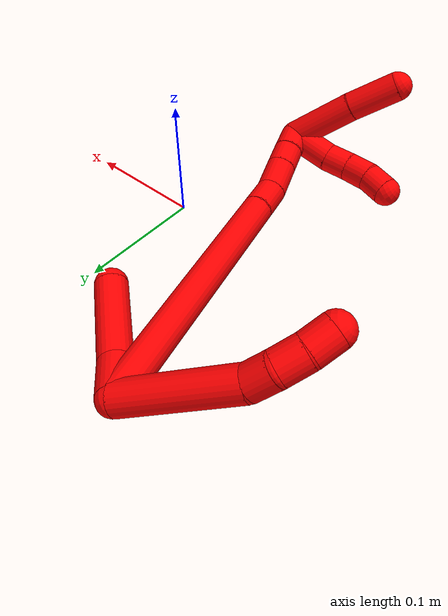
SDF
<sdf version="1.7">
 <world name="default">
  <model name="photoneo_s_sensor">
   <static>1</static>
   <pose>0 0 2 1.57079 1.57079 3.14159</pose>
   <link name="link">
    <inertial><mass>0.1</mass></inertial>
    <sensor name="sensor" type="depth">
     <update_rate>30</update_rate>
     <camera>
      <horizontal_fov>1.22</horizontal_fov>
      <image><width>1920</width><height>1200</height><format>B8G8R8</format></image>
      <clip><near>0.1</near><far>4</far></clip>
      <depth_camera><output>points</output></depth_camera>
     </camera>
     <plugin name="camera_plugin" filename="libgazebo_ros_depth_camera.so">
      <baseline>0.2</baseline>
      <alwaysOn>1</alwaysOn>
      <updateRate>0.0</updateRate>
      <cameraName>camera_ir</cameraName>
      <imageTopicName>/camera/color/image_raw</imageTopicName>
      <cameraInfoTopicName>/camera/color/camera_info</cameraInfoTopicName>
      <depthImageTopicName>/camera/depth/image_raw</depthImageTopicName>
      <depthImageCameraInfoTopicName>/camera/depth/camera_info</depthImageCameraInfoTopicName>
      <pointCloudTopicName>/camera/depth/points</pointCloudTopicName>
      <frameName>fr_optical</frameName>
      <pointCloudCutoff>0.1</pointCloudCutoff>
      <pointCloudCutoffMax>2.0</pointCloudCutoffMax>
      <distortionK1>0</distortionK1>
      <distortionK2>0</distortionK2>
      <distortionK3>0</distortionK3>
      <distortionT1>0</distortionT1>
      <distortionT2>0</distortionT2>
      <CxPrime>0</CxPrime>
      <Cx>0</Cx>
      <Cy>0</Cy>
      <focalLength>0</focalLength>
      <hackBaseline>0</hackBaseline>
     </plugin>
    </sensor>
   </link>
  </model>
  <model name="bin">
   <static>1</static>
   <link name="bottom">
    <collision name="collision-bottom">
     <pose>0 0 -0.01 0 -0 0</pose>
     <geometry><box><size>0.8 0.6 0.02</size></box></geometry>
     <surface>
      <friction><ode><mu>100</mu><mu2>100</mu2></ode></friction>
      <contact><collide_bitmask>65535</collide_bitmask></contact>
     </surface>
    </collision>
   </link>
   <link name="west_wall">
    <collision name="collision-west_wall">
     <pose>-0.41 0 0.1 0 -0 0</pose>
     <geometry><box><size>0.02 0.6 0.2</size></box></geometry>
     <surface>
      <friction><ode><mu>100</mu><mu2>100</mu2></ode></friction>
      <contact><collide_bitmask>65535</collide_bitmask></contact>
     </surface>
    </collision>
   </link>
   <link name="east_wall">
    <collision name="collision-east_wall">
     <pose>0.41 0 0.1 0 -0 0</pose>
     <geometry><box><size>0.02 0.6 0.2</size></box></geometry>
     <surface>
      <friction><ode><mu>100</mu><mu2>100</mu2></ode></friction>
      <contact><collide_bitmask>65535</collide_bitmask></contact>
     </surface>
    </collision>
   </link>
   <link name="south_wall">
    <collision name="collision-south_wall">
     <pose>0 -0.31 0.1 0 -0 0</pose>
     <geometry><box><size>0.8 0.02 0.2</size></box></geometry>
     <surface>
      <friction><ode><mu>100</mu><mu2>100</mu2></ode></friction>
      <contact><collide_bitmask>65535</collide_bitmask></contact>
     </surface>
    </collision>
   </link>
   <link name="north_wall">
    <collision name="collision-north_wall">
     <pose>0 0.31 0.1 0 -0 0</pose>
     <geometry><box><size>0.8 0.02 0.2</size></box></geometry>
     <surface>
      <friction><ode><mu>100</mu><mu2>100</mu2></ode></friction>
      <contact><collide_bitmask>65535</collide_bitmask></contact>
     </surface>
    </collision>
   </link>
  </model>
  <model name="2">
   <static>0</static>
   <link name="2">
    <collision name="collision-cylinder-e_1_2_8">
     <pose>-0.013784 -0.005805 0.041976 0.137424 -0.314481 -0.021822</pose>
     <geometry><cylinder><radius>0.0125</radius><length>0.089122</length></cylinder></geometry>
     <surface>
      <friction><ode><mu>1.16</mu><mu2>1.16</mu2><slip1>0</slip1><slip2>0</slip2></ode></friction>
      <contact><ode><kp>1e+06</kp><kd>1</kd><max_vel>0</max_vel><min_depth>0.001</min_depth></ode></contact>
     </surface>
    </collision>
    <visual name="visual-cylinder-e_1_2_8">
     <pose>-0.013784 -0.005805 0.041976 0.137424 -0.314481 -0.021822</pose>
     <geometry><cylinder><radius>0.0125</radius><length>0.089122</length></cylinder></geometry>
     <material><ambient>1 0 0 1</ambient></material>
    </visual>
    <collision name="collision-cylinder-e_2_8_9">
     <pose>-0.027379 -0.013169 0.093841 0.156313 0.018838 0.001475</pose>
     <geometry><cylinder><radius>0.0125</radius><length>0.020024</length></cylinder></geometry>
     <surface>
      <friction><ode><mu>1.16</mu><mu2>1.16</mu2><slip1>0</slip1><slip2>0</slip2></ode></friction>
      <contact><ode><kp>1e+06</kp><kd>1</kd><max_vel>0</max_vel><min_depth>0.001</min_depth></ode></contact>
     </surface>
    </collision>
    <visual name="visual-cylinder-e_2_8_9">
     <pose>-0.027379 -0.013169 0.093841 0.156313 0.018838 0.001475</pose>
     <geometry><cylinder><radius>0.0125</radius><length>0.020024</length></cylinder></geometry>
     <material><ambient>1 0 0 1</ambient></material>
    </visual>
    <collision name="collision-cylinder-e_3_9_10">
     <pose>-0.027539 -0.019331 0.112832 0.468267 -0.034219 -0.008162</pose>
     <geometry><cylinder><radius>0.0125</radius><length>0.020414</length></cylinder></geometry>
     <surface>
      <friction><ode><mu>1.16</mu><mu2>1.16</mu2><slip1>0</slip1><slip2>0</slip2></ode></friction>
      <contact><ode><kp>1e+06</kp><kd>1</kd><max_vel>0</max_vel><min_depth>0.001</min_depth></ode></contact>
     </surface>
    </collision>
    <visual name="visual-cylinder-e_3_9_10">
     <pose>-0.027539 -0.019331 0.112832 0.468267 -0.034219 -0.008162</pose>
     <geometry><cylinder><radius>0.0125</radius><length>0.020414</length></cylinder></geometry>
     <material><ambient>1 0 0 1</ambient></material>
    </visual>
    <collision name="collision-cylinder-e_4_10_6">
     <pose>-0.02749 -0.029682 0.130376 0.597691 0.039002 0.012017</pose>
     <geometry><cylinder><radius>0.0125</radius><length>0.02044</length></cylinder></geometry>
     <surface>
      <friction><ode><mu>1.16</mu><mu2>1.16</mu2><slip1>0</slip1><slip2>0</slip2></ode></friction>
      <contact><ode><kp>1e+06</kp><kd>1</kd><max_vel>0</max_vel><min_depth>0.001</min_depth></ode></contact>
     </surface>
    </collision>
    <visual name="visual-cylinder-e_4_10_6">
     <pose>-0.02749 -0.029682 0.130376 0.597691 0.039002 0.012017</pose>
     <geometry><cylinder><radius>0.0125</radius><length>0.02044</length></cylinder></geometry>
     <material><ambient>1 0 0 1</ambient></material>
    </visual>
    <collision name="collision-cylinder-e_1_2_11">
     <pose>0.006928 -0.013849 -0.004792 1.90394 0.441644 0.610727</pose>
     <geometry><cylinder><radius>0.0125</radius><length>0.032419</length></cylinder></geometry>
     <surface>
      <friction><ode><mu>1.16</mu><mu2>1.16</mu2><slip1>0</slip1><slip2>0</slip2></ode></friction>
      <contact><ode><kp>1e+06</kp><kd>1</kd><max_vel>0</max_vel><min_depth>0.001</min_depth></ode></contact>
     </surface>
    </collision>
    <visual name="visual-cylinder-e_1_2_11">
     <pose>0.006928 -0.013849 -0.004792 1.90394 0.441644 0.610727</pose>
     <geometry><cylinder><radius>0.0125</radius><length>0.032419</length></cylinder></geometry>
     <material><ambient>1 0 0 1</ambient></material>
    </visual>
    <collision name="collision-cylinder-e_2_11_5">
     <pose>0.034687 -0.053637 -0.015504 1.79514 0.664219 0.816324</pose>
     <geometry><cylinder><radius>0.0125</radius><length>0.067581</length></cylinder></geometry>
     <surface>
      <friction><ode><mu>1.16</mu><mu2>1.16</mu2><slip1>0</slip1><slip2>0</slip2></ode></friction>
      <contact><ode><kp>1e+06</kp><kd>1</kd><max_vel>0</max_vel><min_depth>0.001</min_depth></ode></contact>
     </surface>
    </collision>
    <visual name="visual-cylinder-e_2_11_5">
     <pose>0.034687 -0.053637 -0.015504 1.79514 0.664219 0.816324</pose>
     <geometry><cylinder><radius>0.0125</radius><length>0.067581</length></cylinder></geometry>
     <material><ambient>1 0 0 1</ambient></material>
    </visual>
    <collision name="collision-cylinder-e_1_2_12">
     <pose>0.020097 -0.095782 0.028031 1.2861 0.198713 0.149109</pose>
     <geometry><cylinder><radius>0.0125</radius><length>0.203606</length></cylinder></geometry>
     <surface>
      <friction><ode><mu>1.16</mu><mu2>1.16</mu2><slip1>0</slip1><slip2>0</slip2></ode></friction>
      <contact><ode><kp>1e+06</kp><kd>1</kd><max_vel>0</max_vel><min_depth>0.001</min_depth></ode></contact>
     </surface>
    </collision>
    <visual name="visual-cylinder-e_1_2_12">
     <pose>0.020097 -0.095782 0.028031 1.2861 0.198713 0.149109</pose>
     <geometry><cylinder><radius>0.0125</radius><length>0.203606</length></cylinder></geometry>
     <material><ambient>1 0 0 1</ambient></material>
    </visual>
    <collision name="collision-cylinder-e_2_12_13">
     <pose>0.042675 -0.204762 0.059144 1.34133 0.18107 0.143796</pose>
     <geometry><cylinder><radius>0.0125</radius><length>0.027556</length></cylinder></geometry>
     <surface>
      <friction><ode><mu>1.16</mu><mu2>1.16</mu2><slip1>0</slip1><slip2>0</slip2></ode></friction>
      <contact><ode><kp>1e+06</kp><kd>1</kd><max_vel>0</max_vel><min_depth>0.001</min_depth></ode></contact>
     </surface>
    </collision>
    <visual name="visual-cylinder-e_2_12_13">
     <pose>0.042675 -0.204762 0.059144 1.34133 0.18107 0.143796</pose>
     <geometry><cylinder><radius>0.0125</radius><length>0.027556</length></cylinder></geometry>
     <material><ambient>1 0 0 1</ambient></material>
    </visual>
    <collision name="collision-cylinder-e_3_13_14">
     <pose>0.051093 -0.229962 0.066892 1.20006 0.432049 0.298058</pose>
     <geometry><cylinder><radius>0.0125</radius><length>0.02836</length></cylinder></geometry>
     <surface>
      <friction><ode><mu>1.16</mu><mu2>1.16</mu2><slip1>0</slip1><slip2>0</slip2></ode></friction>
      <contact><ode><kp>1e+06</kp><kd>1</kd><max_vel>0</max_vel><min_depth>0.001</min_depth></ode></contact>
     </surface>
    </collision>
    <visual name="visual-cylinder-e_3_13_14">
     <pose>0.051093 -0.229962 0.066892 1.20006 0.432049 0.298058</pose>
     <geometry><cylinder><radius>0.0125</radius><length>0.02836</length></cylinder></geometry>
     <material><ambient>1 0 0 1</ambient></material>
    </visual>
    <collision name="collision-cylinder-e_4_14_15">
     <pose>0.061254 -0.250411 0.075022 1.18155 0.433189 0.293046</pose>
     <geometry><cylinder><radius>0.0125</radius><length>0.020119</length></cylinder></geometry>
     <surface>
      <friction><ode><mu>1.16</mu><mu2>1.16</mu2><slip1>0</slip1><slip2>0</slip2></ode></friction>
      <contact><ode><kp>1e+06</kp><kd>1</kd><max_vel>0</max_vel><min_depth>0.001</min_depth></ode></contact>
     </surface>
    </collision>
    <visual name="visual-cylinder-e_4_14_15">
     <pose>0.061254 -0.250411 0.075022 1.18155 0.433189 0.293046</pose>
     <geometry><cylinder><radius>0.0125</radius><length>0.020119</length></cylinder></geometry>
     <material><ambient>1 0 0 1</ambient></material>
    </visual>
    <collision name="collision-cylinder-e_5_15_1">
     <pose>0.069429 -0.26767 0.081706 1.22056 0.398751 0.280757</pose>
     <geometry><cylinder><radius>0.0125</radius><length>0.020359</length></cylinder></geometry>
     <surface>
      <friction><ode><mu>1.16</mu><mu2>1.16</mu2><slip1>0</slip1><slip2>0</slip2></ode></friction>
      <contact><ode><kp>1e+06</kp><kd>1</kd><max_vel>0</max_vel><min_depth>0.001</min_depth></ode></contact>
     </surface>
    </collision>
    <visual name="visual-cylinder-e_5_15_1">
     <pose>0.069429 -0.26767 0.081706 1.22056 0.398751 0.280757</pose>
     <geometry><cylinder><radius>0.0125</radius><length>0.020359</length></cylinder></geometry>
     <material><ambient>1 0 0 1</ambient></material>
    </visual>
    <collision name="collision-cylinder-e_1_1_16">
     <pose>0.071239 -0.278283 0.113479 0.063028 -0.074721 -0.002357</pose>
     <geometry><cylinder><radius>0.0125</radius><length>0.057382</length></cylinder></geometry>
     <surface>
      <friction><ode><mu>1.16</mu><mu2>1.16</mu2><slip1>0</slip1><slip2>0</slip2></ode></friction>
      <contact><ode><kp>1e+06</kp><kd>1</kd><max_vel>0</max_vel><min_depth>0.001</min_depth></ode></contact>
     </surface>
    </collision>
    <visual name="visual-cylinder-e_1_1_16">
     <pose>0.071239 -0.278283 0.113479 0.063028 -0.074721 -0.002357</pose>
     <geometry><cylinder><radius>0.0125</radius><length>0.057382</length></cylinder></geometry>
     <material><ambient>1 0 0 1</ambient></material>
    </visual>
    <collision name="collision-cylinder-e_2_16_4">
     <pose>0.066145 -0.282445 0.163005 0.112023 -0.138994 -0.007806</pose>
     <geometry><cylinder><radius>0.0125</radius><length>0.042618</length></cylinder></geometry>
     <surface>
      <friction><ode><mu>1.16</mu><mu2>1.16</mu2><slip1>0</slip1><slip2>0</slip2></ode></friction>
      <contact><ode><kp>1e+06</kp><kd>1</kd><max_vel>0</max_vel><min_depth>0.001</min_depth></ode></contact>
     </surface>
    </collision>
    <visual name="visual-cylinder-e_2_16_4">
     <pose>0.066145 -0.282445 0.163005 0.112023 -0.138994 -0.007806</pose>
     <geometry><cylinder><radius>0.0125</radius><length>0.042618</length></cylinder></geometry>
     <material><ambient>1 0 0 1</ambient></material>
    </visual>
    <collision name="collision-cylinder-e_1_1_17">
     <pose>0.057195 -0.274295 0.093871 -0.239654 -1.0535 0.139816</pose>
     <geometry><cylinder><radius>0.0125</radius><length>0.037245</length></cylinder></geometry>
     <surface>
      <friction><ode><mu>1.16</mu><mu2>1.16</mu2><slip1>0</slip1><slip2>0</slip2></ode></friction>
      <contact><ode><kp>1e+06</kp><kd>1</kd><max_vel>0</max_vel><min_depth>0.001</min_depth></ode></contact>
     </surface>
    </collision>
    <visual name="visual-cylinder-e_1_1_17">
     <pose>0.057195 -0.274295 0.093871 -0.239654 -1.0535 0.139816</pose>
     <geometry><cylinder><radius>0.0125</radius><length>0.037245</length></cylinder></geometry>
     <material><ambient>1 0 0 1</ambient></material>
    </visual>
    <collision name="collision-cylinder-e_2_17_18">
     <pose>0.032855 -0.270743 0.109224 -0.210148 -0.893951 0.101016</pose>
     <geometry><cylinder><radius>0.0125</radius><length>0.02092</length></cylinder></geometry>
     <surface>
      <friction><ode><mu>1.16</mu><mu2>1.16</mu2><slip1>0</slip1><slip2>0</slip2></ode></friction>
      <contact><ode><kp>1e+06</kp><kd>1</kd><max_vel>0</max_vel><min_depth>0.001</min_depth></ode></contact>
     </surface>
    </collision>
    <visual name="visual-cylinder-e_2_17_18">
     <pose>0.032855 -0.270743 0.109224 -0.210148 -0.893951 0.101016</pose>
     <geometry><cylinder><radius>0.0125</radius><length>0.02092</length></cylinder></geometry>
     <material><ambient>1 0 0 1</ambient></material>
    </visual>
    <collision name="collision-cylinder-e_3_18_19">
     <pose>0.016778 -0.265866 0.122184 -0.491857 -0.817305 0.216539</pose>
     <geometry><cylinder><radius>0.0125</radius><length>0.021728</length></cylinder></geometry>
     <surface>
      <friction><ode><mu>1.16</mu><mu2>1.16</mu2><slip1>0</slip1><slip2>0</slip2></ode></friction>
      <contact><ode><kp>1e+06</kp><kd>1</kd><max_vel>0</max_vel><min_depth>0.001</min_depth></ode></contact>
     </surface>
    </collision>
    <visual name="visual-cylinder-e_3_18_19">
     <pose>0.016778 -0.265866 0.122184 -0.491857 -0.817305 0.216539</pose>
     <geometry><cylinder><radius>0.0125</radius><length>0.021728</length></cylinder></geometry>
     <material><ambient>1 0 0 1</ambient></material>
    </visual>
    <collision name="collision-cylinder-e_4_19_3">
     <pose>0.000951 -0.257928 0.133094 -0.793252 -0.904647 0.401547</pose>
     <geometry><cylinder><radius>0.0125</radius><length>0.020108</length></cylinder></geometry>
     <surface>
      <friction><ode><mu>1.16</mu><mu2>1.16</mu2><slip1>0</slip1><slip2>0</slip2></ode></friction>
      <contact><ode><kp>1e+06</kp><kd>1</kd><max_vel>0</max_vel><min_depth>0.001</min_depth></ode></contact>
     </surface>
    </collision>
    <visual name="visual-cylinder-e_4_19_3">
     <pose>0.000951 -0.257928 0.133094 -0.793252 -0.904647 0.401547</pose>
     <geometry><cylinder><radius>0.0125</radius><length>0.020108</length></cylinder></geometry>
     <material><ambient>1 0 0 1</ambient></material>
    </visual>
    <collision name="collision-sphere-3">
     <pose>-0.006954 -0.2535 0.137452 0 -0 0</pose>
     <geometry><sphere><radius>0.0125</radius></sphere></geometry>
     <surface>
      <friction><ode><mu>1.16</mu><mu2>1.16</mu2><slip1>0</slip1><slip2>0</slip2></ode></friction>
      <contact><ode><kp>1e+06</kp><kd>1</kd><max_vel>0</max_vel><min_depth>0.001</min_depth></ode></contact>
     </surface>
    </collision>
    <visual name="visual-sphere-3">
     <pose>-0.006954 -0.2535 0.137452 0 -0 0</pose>
     <geometry><sphere><radius>0.0125</radius></sphere></geometry>
     <material><ambient>1 0 0 1</ambient></material>
    </visual>
    <collision name="collision-sphere-19">
     <pose>0.008855 -0.262355 0.128735 0 -0 0</pose>
     <geometry><sphere><radius>0.0125</radius></sphere></geometry>
     <surface>
      <friction><ode><mu>1.16</mu><mu2>1.16</mu2><slip1>0</slip1><slip2>0</slip2></ode></friction>
      <contact><ode><kp>1e+06</kp><kd>1</kd><max_vel>0</max_vel><min_depth>0.001</min_depth></ode></contact>
     </surface>
    </collision>
    <visual name="visual-sphere-19">
     <pose>0.008855 -0.262355 0.128735 0 -0 0</pose>
     <geometry><sphere><radius>0.0125</radius></sphere></geometry>
     <material><ambient>1 0 0 1</ambient></material>
    </visual>
    <collision name="collision-sphere-11">
     <pose>0.013857 -0.027697 -0.009584 0 -0 0</pose>
     <geometry><sphere><radius>0.0125</radius></sphere></geometry>
     <surface>
      <friction><ode><mu>1.16</mu><mu2>1.16</mu2><slip1>0</slip1><slip2>0</slip2></ode></friction>
      <contact><ode><kp>1e+06</kp><kd>1</kd><max_vel>0</max_vel><min_depth>0.001</min_depth></ode></contact>
     </surface>
    </collision>
    <visual name="visual-sphere-11">
     <pose>0.013857 -0.027697 -0.009584 0 -0 0</pose>
     <geometry><sphere><radius>0.0125</radius></sphere></geometry>
     <material><ambient>1 0 0 1</ambient></material>
    </visual>
    <collision name="collision-sphere-6">
     <pose>-0.027092 -0.035429 0.138818 0 -0 0</pose>
     <geometry><sphere><radius>0.0125</radius></sphere></geometry>
     <surface>
      <friction><ode><mu>1.16</mu><mu2>1.16</mu2><slip1>0</slip1><slip2>0</slip2></ode></friction>
      <contact><ode><kp>1e+06</kp><kd>1</kd><max_vel>0</max_vel><min_depth>0.001</min_depth></ode></contact>
     </surface>
    </collision>
    <visual name="visual-sphere-6">
     <pose>-0.027092 -0.035429 0.138818 0 -0 0</pose>
     <geometry><sphere><radius>0.0125</radius></sphere></geometry>
     <material><ambient>1 0 0 1</ambient></material>
    </visual>
    <collision name="collision-sphere-10">
     <pose>-0.027889 -0.023935 0.121934 0 -0 0</pose>
     <geometry><sphere><radius>0.0125</radius></sphere></geometry>
     <surface>
      <friction><ode><mu>1.16</mu><mu2>1.16</mu2><slip1>0</slip1><slip2>0</slip2></ode></friction>
      <contact><ode><kp>1e+06</kp><kd>1</kd><max_vel>0</max_vel><min_depth>0.001</min_depth></ode></contact>
     </surface>
    </collision>
    <visual name="visual-sphere-10">
     <pose>-0.027889 -0.023935 0.121934 0 -0 0</pose>
     <geometry><sphere><radius>0.0125</radius></sphere></geometry>
     <material><ambient>1 0 0 1</ambient></material>
    </visual>
    <collision name="collision-sphere-9">
     <pose>-0.02719 -0.014727 0.103729 0 -0 0</pose>
     <geometry><sphere><radius>0.0125</radius></sphere></geometry>
     <surface>
      <friction><ode><mu>1.16</mu><mu2>1.16</mu2><slip1>0</slip1><slip2>0</slip2></ode></friction>
      <contact><ode><kp>1e+06</kp><kd>1</kd><max_vel>0</max_vel><min_depth>0.001</min_depth></ode></contact>
     </surface>
    </collision>
    <visual name="visual-sphere-9">
     <pose>-0.02719 -0.014727 0.103729 0 -0 0</pose>
     <geometry><sphere><radius>0.0125</radius></sphere></geometry>
     <material><ambient>1 0 0 1</ambient></material>
    </visual>
    <collision name="collision-sphere-2">
     <geometry><sphere><radius>0.0125</radius></sphere></geometry>
     <surface>
      <friction><ode><mu>1.16</mu><mu2>1.16</mu2><slip1>0</slip1><slip2>0</slip2></ode></friction>
      <contact><ode><kp>1e+06</kp><kd>1</kd><max_vel>0</max_vel><min_depth>0.001</min_depth></ode></contact>
     </surface>
    </collision>
    <visual name="visual-sphere-2">
     <geometry><sphere><radius>0.0125</radius></sphere></geometry>
     <material><ambient>1 0 0 1</ambient></material>
    </visual>
    <collision name="collision-sphere-8">
     <pose>-0.027567 -0.01161 0.083952 0 -0 0</pose>
     <geometry><sphere><radius>0.0125</radius></sphere></geometry>
     <surface>
      <friction><ode><mu>1.16</mu><mu2>1.16</mu2><slip1>0</slip1><slip2>0</slip2></ode></friction>
      <contact><ode><kp>1e+06</kp><kd>1</kd><max_vel>0</max_vel><min_depth>0.001</min_depth></ode></contact>
     </surface>
    </collision>
    <visual name="visual-sphere-8">
     <pose>-0.027567 -0.01161 0.083952 0 -0 0</pose>
     <geometry><sphere><radius>0.0125</radius></sphere></geometry>
     <material><ambient>1 0 0 1</ambient></material>
    </visual>
    <collision name="collision-sphere-5">
     <pose>0.055517 -0.079577 -0.021423 0 -0 0</pose>
     <geometry><sphere><radius>0.0125</radius></sphere></geometry>
     <surface>
      <friction><ode><mu>1.16</mu><mu2>1.16</mu2><slip1>0</slip1><slip2>0</slip2></ode></friction>
      <contact><ode><kp>1e+06</kp><kd>1</kd><max_vel>0</max_vel><min_depth>0.001</min_depth></ode></contact>
     </surface>
    </collision>
    <visual name="visual-sphere-5">
     <pose>0.055517 -0.079577 -0.021423 0 -0 0</pose>
     <geometry><sphere><radius>0.0125</radius></sphere></geometry>
     <material><ambient>1 0 0 1</ambient></material>
    </visual>
    <collision name="collision-sphere-12">
     <pose>0.040193 -0.191564 0.056061 0 -0 0</pose>
     <geometry><sphere><radius>0.0125</radius></sphere></geometry>
     <surface>
      <friction><ode><mu>1.16</mu><mu2>1.16</mu2><slip1>0</slip1><slip2>0</slip2></ode></friction>
      <contact><ode><kp>1e+06</kp><kd>1</kd><max_vel>0</max_vel><min_depth>0.001</min_depth></ode></contact>
     </surface>
    </collision>
    <visual name="visual-sphere-12">
     <pose>0.040193 -0.191564 0.056061 0 -0 0</pose>
     <geometry><sphere><radius>0.0125</radius></sphere></geometry>
     <material><ambient>1 0 0 1</ambient></material>
    </visual>
    <collision name="collision-sphere-13">
     <pose>0.045156 -0.21796 0.062227 0 -0 0</pose>
     <geometry><sphere><radius>0.0125</radius></sphere></geometry>
     <surface>
      <friction><ode><mu>1.16</mu><mu2>1.16</mu2><slip1>0</slip1><slip2>0</slip2></ode></friction>
      <contact><ode><kp>1e+06</kp><kd>1</kd><max_vel>0</max_vel><min_depth>0.001</min_depth></ode></contact>
     </surface>
    </collision>
    <visual name="visual-sphere-13">
     <pose>0.045156 -0.21796 0.062227 0 -0 0</pose>
     <geometry><sphere><radius>0.0125</radius></sphere></geometry>
     <material><ambient>1 0 0 1</ambient></material>
    </visual>
    <collision name="collision-sphere-14">
     <pose>0.057031 -0.241964 0.071558 0 -0 0</pose>
     <geometry><sphere><radius>0.0125</radius></sphere></geometry>
     <surface>
      <friction><ode><mu>1.16</mu><mu2>1.16</mu2><slip1>0</slip1><slip2>0</slip2></ode></friction>
      <contact><ode><kp>1e+06</kp><kd>1</kd><max_vel>0</max_vel><min_depth>0.001</min_depth></ode></contact>
     </surface>
    </collision>
    <visual name="visual-sphere-14">
     <pose>0.057031 -0.241964 0.071558 0 -0 0</pose>
     <geometry><sphere><radius>0.0125</radius></sphere></geometry>
     <material><ambient>1 0 0 1</ambient></material>
    </visual>
    <collision name="collision-sphere-15">
     <pose>0.065476 -0.258859 0.078487 0 -0 0</pose>
     <geometry><sphere><radius>0.0125</radius></sphere></geometry>
     <surface>
      <friction><ode><mu>1.16</mu><mu2>1.16</mu2><slip1>0</slip1><slip2>0</slip2></ode></friction>
      <contact><ode><kp>1e+06</kp><kd>1</kd><max_vel>0</max_vel><min_depth>0.001</min_depth></ode></contact>
     </surface>
    </collision>
    <visual name="visual-sphere-15">
     <pose>0.065476 -0.258859 0.078487 0 -0 0</pose>
     <geometry><sphere><radius>0.0125</radius></sphere></geometry>
     <material><ambient>1 0 0 1</ambient></material>
    </visual>
    <collision name="collision-sphere-1">
     <pose>0.073381 -0.276481 0.084925 0 -0 0</pose>
     <geometry><sphere><radius>0.0125</radius></sphere></geometry>
     <surface>
      <friction><ode><mu>1.16</mu><mu2>1.16</mu2><slip1>0</slip1><slip2>0</slip2></ode></friction>
      <contact><ode><kp>1e+06</kp><kd>1</kd><max_vel>0</max_vel><min_depth>0.001</min_depth></ode></contact>
     </surface>
    </collision>
    <visual name="visual-sphere-1">
     <pose>0.073381 -0.276481 0.084925 0 -0 0</pose>
     <geometry><sphere><radius>0.0125</radius></sphere></geometry>
     <material><ambient>1 0 0 1</ambient></material>
    </visual>
    <collision name="collision-sphere-18">
     <pose>0.024701 -0.269376 0.115632 0 -0 0</pose>
     <geometry><sphere><radius>0.0125</radius></sphere></geometry>
     <surface>
      <friction><ode><mu>1.16</mu><mu2>1.16</mu2><slip1>0</slip1><slip2>0</slip2></ode></friction>
      <contact><ode><kp>1e+06</kp><kd>1</kd><max_vel>0</max_vel><min_depth>0.001</min_depth></ode></contact>
     </surface>
    </collision>
    <visual name="visual-sphere-18">
     <pose>0.024701 -0.269376 0.115632 0 -0 0</pose>
     <geometry><sphere><radius>0.0125</radius></sphere></geometry>
     <material><ambient>1 0 0 1</ambient></material>
    </visual>
    <collision name="collision-sphere-16">
     <pose>0.069097 -0.280086 0.142034 0 -0 0</pose>
     <geometry><sphere><radius>0.0125</radius></sphere></geometry>
     <surface>
      <friction><ode><mu>1.16</mu><mu2>1.16</mu2><slip1>0</slip1><slip2>0</slip2></ode></friction>
      <contact><ode><kp>1e+06</kp><kd>1</kd><max_vel>0</max_vel><min_depth>0.001</min_depth></ode></contact>
     </surface>
    </collision>
    <visual name="visual-sphere-16">
     <pose>0.069097 -0.280086 0.142034 0 -0 0</pose>
     <geometry><sphere><radius>0.0125</radius></sphere></geometry>
     <material><ambient>1 0 0 1</ambient></material>
    </visual>
    <collision name="collision-sphere-4">
     <pose>0.063193 -0.284804 0.183976 0 -0 0</pose>
     <geometry><sphere><radius>0.0125</radius></sphere></geometry>
     <surface>
      <friction><ode><mu>1.16</mu><mu2>1.16</mu2><slip1>0</slip1><slip2>0</slip2></ode></friction>
      <contact><ode><kp>1e+06</kp><kd>1</kd><max_vel>0</max_vel><min_depth>0.001</min_depth></ode></contact>
     </surface>
    </collision>
    <visual name="visual-sphere-4">
     <pose>0.063193 -0.284804 0.183976 0 -0 0</pose>
     <geometry><sphere><radius>0.0125</radius></sphere></geometry>
     <material><ambient>1 0 0 1</ambient></material>
    </visual>
    <collision name="collision-sphere-17">
     <pose>0.04101 -0.272109 0.102817 0 -0 0</pose>
     <geometry><sphere><radius>0.0125</radius></sphere></geometry>
     <surface>
      <friction><ode><mu>1.16</mu><mu2>1.16</mu2><slip1>0</slip1><slip2>0</slip2></ode></friction>
      <contact><ode><kp>1e+06</kp><kd>1</kd><max_vel>0</max_vel><min_depth>0.001</min_depth></ode></contact>
     </surface>
    </collision>
    <visual name="visual-sphere-17">
     <pose>0.04101 -0.272109 0.102817 0 -0 0</pose>
     <geometry><sphere><radius>0.0125</radius></sphere></geometry>
     <material><ambient>1 0 0 1</ambient></material>
    </visual>
    <inertial>
     <pose>0.025518 -0.137144 0.061817 0 -0 0</pose>
     <mass>0.75</mass>
     <inertia>
      <ixx>0.000936</ixx>
      <ixy>0</ixy>
      <ixz>0</ixz>
      <iyy>0.000425</iyy>
      <iyz>0</iyz>
      <izz>0.000608</izz>
     </inertia>
    </inertial>
   </link>
   <pose>-0.106462 0.170737 0.017783 0.499654 -0.755298 -0.057605</pose>
  </model>
 </world>
</sdf>
